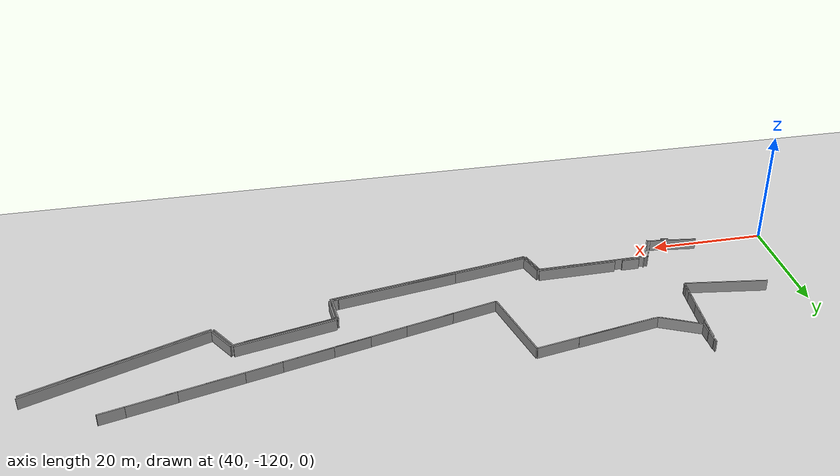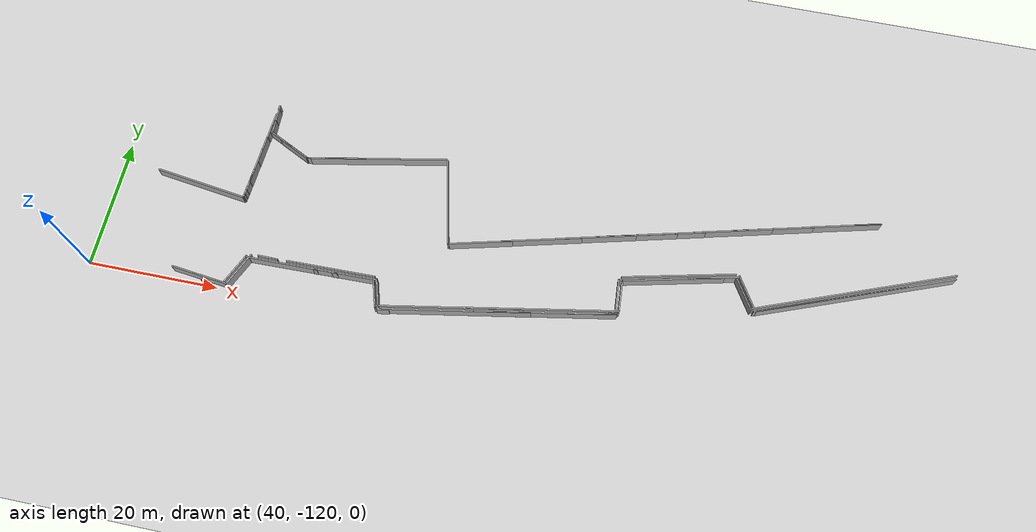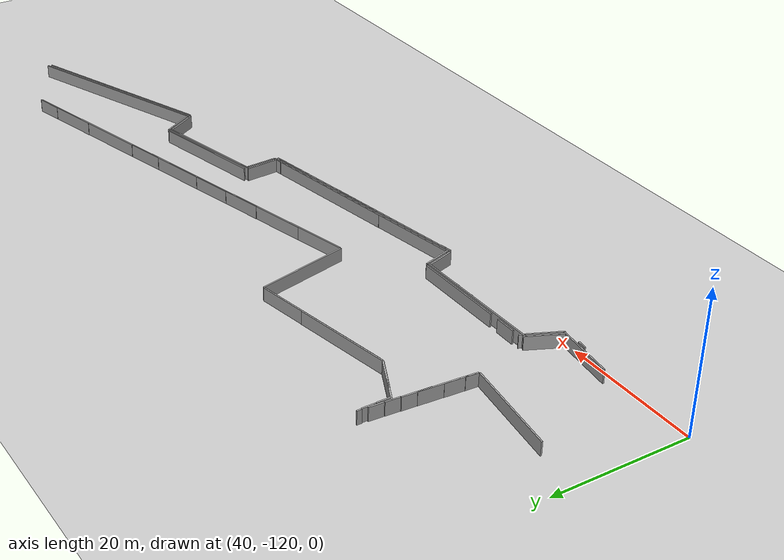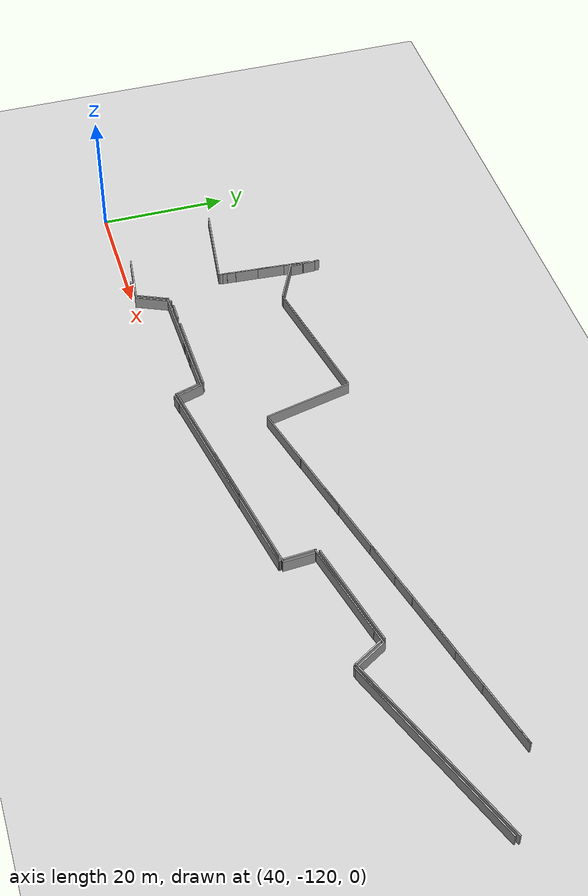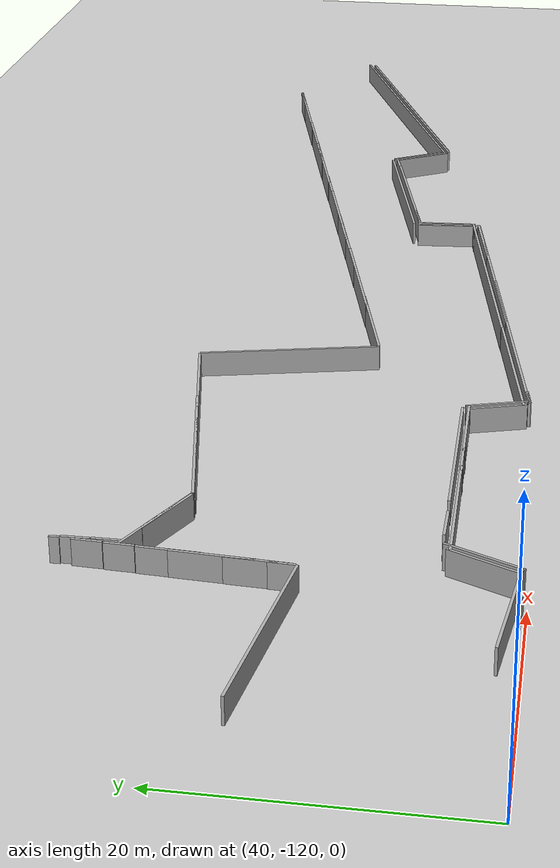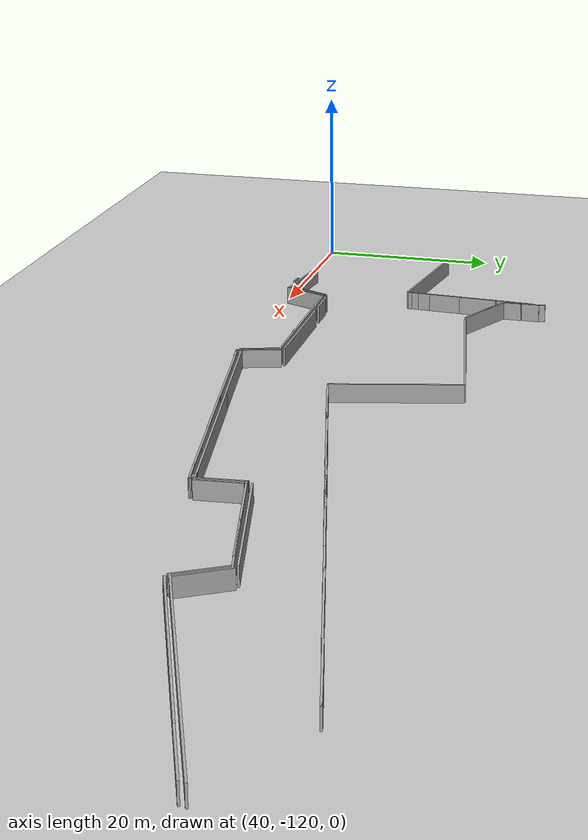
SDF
<sdf version="1.7">
 <world name="slam_world">
  <model name="ground_plane">
   <static>1</static>
   <link name="link">
    <collision name="collision">
     <geometry><plane><normal>0 0 1</normal><size>100 100</size></plane></geometry>
    </collision>
    <visual name="visual">
     <geometry><plane><normal>0 0 1</normal><size>100 100</size></plane></geometry>
     <material>
      <ambient>0.8 0.8 0.8 1</ambient>
      <diffuse>0.8 0.8 0.8 1</diffuse>
      <specular>0.8 0.8 0.8 1</specular>
     </material>
    </visual>
   </link>
  </model>
  <model name="wall_9">
   <static>1</static>
   <pose>78.951 -95.15 1 0 -0 0.189988</pose>
   <link name="link">
    <collision name="collision"><geometry><box><size>21.1811 0.2 2</size></box></geometry></collision>
    <visual name="visual">
     <geometry><box><size>21.1811 0.2 2</size></box></geometry>
     <material><ambient>0.5 0.5 0.5 1</ambient><diffuse>0.7 0.7 0.7 1</diffuse></material>
    </visual>
   </link>
  </model>
  <model name="wall_26">
   <static>1</static>
   <pose>150.051 -104 1 0 -0 0.364735</pose>
   <link name="link">
    <collision name="collision"><geometry><box><size>23.5491 0.2 2</size></box></geometry></collision>
    <visual name="visual">
     <geometry><box><size>23.5491 0.2 2</size></box></geometry>
     <material><ambient>0.5 0.5 0.5 1</ambient><diffuse>0.7 0.7 0.7 1</diffuse></material>
    </visual>
   </link>
  </model>
  <model name="wall_29">
   <static>1</static>
   <pose>73.451 -114.725 1 0 -0 0.017325</pose>
   <link name="link">
    <collision name="collision"><geometry><box><size>20.203 0.2 2</size></box></geometry></collision>
    <visual name="visual">
     <geometry><box><size>20.203 0.2 2</size></box></geometry>
     <material><ambient>0.5 0.5 0.5 1</ambient><diffuse>0.7 0.7 0.7 1</diffuse></material>
    </visual>
   </link>
  </model>
  <model name="wall_31">
   <static>1</static>
   <pose>76.326 -114.2 1 0 -0 0.014651</pose>
   <link name="link">
    <collision name="collision"><geometry><box><size>13.6515 0.2 2</size></box></geometry></collision>
    <visual name="visual">
     <geometry><box><size>13.6515 0.2 2</size></box></geometry>
     <material><ambient>0.5 0.5 0.5 1</ambient><diffuse>0.7 0.7 0.7 1</diffuse></material>
    </visual>
   </link>
  </model>
  <model name="wall_45">
   <static>1</static>
   <pose>153.326 -102.225 1 0 -0 0.36672</pose>
   <link name="link">
    <collision name="collision"><geometry><box><size>31.6548 0.2 2</size></box></geometry></collision>
    <visual name="visual">
     <geometry><box><size>31.6548 0.2 2</size></box></geometry>
     <material><ambient>0.5 0.5 0.5 1</ambient><diffuse>0.7 0.7 0.7 1</diffuse></material>
    </visual>
   </link>
  </model>
  <model name="wall_48">
   <static>1</static>
   <pose>91.026 -99.975 1 0 0 -1.344</pose>
   <link name="link">
    <collision name="collision"><geometry><box><size>14.0087 0.2 2</size></box></geometry></collision>
    <visual name="visual">
     <geometry><box><size>14.0087 0.2 2</size></box></geometry>
     <material><ambient>0.5 0.5 0.5 1</ambient><diffuse>0.7 0.7 0.7 1</diffuse></material>
    </visual>
   </link>
  </model>
  <model name="wall_59">
   <static>1</static>
   <pose>95.001 -116.575 1 0 -0 0.176388</pose>
   <link name="link">
    <collision name="collision"><geometry><box><size>21.9404 0.2 2</size></box></geometry></collision>
    <visual name="visual">
     <geometry><box><size>21.9404 0.2 2</size></box></geometry>
     <material><ambient>0.5 0.5 0.5 1</ambient><diffuse>0.7 0.7 0.7 1</diffuse></material>
    </visual>
   </link>
  </model>
  <model name="wall_111">
   <static>1</static>
   <pose>108.576 -114.125 1 0 -0 0.176474</pose>
   <link name="link">
    <collision name="collision"><geometry><box><size>22.4994 0.2 2</size></box></geometry></collision>
    <visual name="visual">
     <geometry><box><size>22.4994 0.2 2</size></box></geometry>
     <material><ambient>0.5 0.5 0.5 1</ambient><diffuse>0.7 0.7 0.7 1</diffuse></material>
    </visual>
   </link>
  </model>
  <model name="wall_116">
   <static>1</static>
   <pose>127.601 -105.35 1 0 -0 0.228873</pose>
   <link name="link">
    <collision name="collision"><geometry><box><size>18.0712 0.2 2</size></box></geometry></collision>
    <visual name="visual">
     <geometry><box><size>18.0712 0.2 2</size></box></geometry>
     <material><ambient>0.5 0.5 0.5 1</ambient><diffuse>0.7 0.7 0.7 1</diffuse></material>
    </visual>
   </link>
  </model>
  <model name="wall_121">
   <static>1</static>
   <pose>95.751 -116.925 1 0 -0 0.174545</pose>
   <link name="link">
    <collision name="collision"><geometry><box><size>22.7456 0.2 2</size></box></geometry></collision>
    <visual name="visual">
     <geometry><box><size>22.7456 0.2 2</size></box></geometry>
     <material><ambient>0.5 0.5 0.5 1</ambient><diffuse>0.7 0.7 0.7 1</diffuse></material>
    </visual>
   </link>
  </model>
  <model name="wall_130">
   <static>1</static>
   <pose>109.026 -114.55 1 0 -0 0.176459</pose>
   <link name="link">
    <collision name="collision"><geometry><box><size>21.0773 0.2 2</size></box></geometry></collision>
    <visual name="visual">
     <geometry><box><size>21.0773 0.2 2</size></box></geometry>
     <material><ambient>0.5 0.5 0.5 1</ambient><diffuse>0.7 0.7 0.7 1</diffuse></material>
    </visual>
   </link>
  </model>
  <model name="wall_135">
   <static>1</static>
   <pose>153.726 -102.625 1 0 -0 0.366235</pose>
   <link name="link">
    <collision name="collision"><geometry><box><size>30.5779 0.2 2</size></box></geometry></collision>
    <visual name="visual">
     <geometry><box><size>30.5779 0.2 2</size></box></geometry>
     <material><ambient>0.5 0.5 0.5 1</ambient><diffuse>0.7 0.7 0.7 1</diffuse></material>
    </visual>
   </link>
  </model>
  <model name="wall_137">
   <static>1</static>
   <pose>127.476 -104.875 1 0 -0 0.225927</pose>
   <link name="link">
    <collision name="collision"><geometry><box><size>17.1868 0.2 2</size></box></geometry></collision>
    <visual name="visual">
     <geometry><box><size>17.1868 0.2 2</size></box></geometry>
     <material><ambient>0.5 0.5 0.5 1</ambient><diffuse>0.7 0.7 0.7 1</diffuse></material>
    </visual>
   </link>
  </model>
  <model name="wall_160">
   <static>1</static>
   <pose>57.376 -119.025 1 0 0 -0.119429</pose>
   <link name="link">
    <collision name="collision"><geometry><box><size>8.81278 0.2 2</size></box></geometry></collision>
    <visual name="visual">
     <geometry><box><size>8.81278 0.2 2</size></box></geometry>
     <material><ambient>0.5 0.5 0.5 1</ambient><diffuse>0.7 0.7 0.7 1</diffuse></material>
    </visual>
   </link>
  </model>
  <model name="wall_184">
   <static>1</static>
   <pose>53.101 -104.625 1 0 0 -0.137426</pose>
   <link name="link">
    <collision name="collision"><geometry><box><size>14.2342 0.2 2</size></box></geometry></collision>
    <visual name="visual">
     <geometry><box><size>14.2342 0.2 2</size></box></geometry>
     <material><ambient>0.5 0.5 0.5 1</ambient><diffuse>0.7 0.7 0.7 1</diffuse></material>
    </visual>
   </link>
  </model>
  <model name="wall_186">
   <static>1</static>
   <pose>140.451 -94.55 1 0 -0 0.246955</pose>
   <link name="link">
    <collision name="collision"><geometry><box><size>12.2723 0.2 2</size></box></geometry></collision>
    <visual name="visual">
     <geometry><box><size>12.2723 0.2 2</size></box></geometry>
     <material><ambient>0.5 0.5 0.5 1</ambient><diffuse>0.7 0.7 0.7 1</diffuse></material>
    </visual>
   </link>
  </model>
  <model name="wall_196">
   <static>1</static>
   <pose>120.351 -99.7 1 0 -0 0.246955</pose>
   <link name="link">
    <collision name="collision"><geometry><box><size>12.2723 0.2 2</size></box></geometry></collision>
    <visual name="visual">
     <geometry><box><size>12.2723 0.2 2</size></box></geometry>
     <material><ambient>0.5 0.5 0.5 1</ambient><diffuse>0.7 0.7 0.7 1</diffuse></material>
    </visual>
   </link>
  </model>
  <model name="wall_218">
   <static>1</static>
   <pose>106.301 -103.3 1 0 -0 0.246955</pose>
   <link name="link">
    <collision name="collision"><geometry><box><size>12.2723 0.2 2</size></box></geometry></collision>
    <visual name="visual">
     <geometry><box><size>12.2723 0.2 2</size></box></geometry>
     <material><ambient>0.5 0.5 0.5 1</ambient><diffuse>0.7 0.7 0.7 1</diffuse></material>
    </visual>
   </link>
  </model>
  <model name="wall_261">
   <static>1</static>
   <pose>150.501 -91.975 1 0 -0 0.246989</pose>
   <link name="link">
    <collision name="collision"><geometry><box><size>12.0662 0.2 2</size></box></geometry></collision>
    <visual name="visual">
     <geometry><box><size>12.0662 0.2 2</size></box></geometry>
     <material><ambient>0.5 0.5 0.5 1</ambient><diffuse>0.7 0.7 0.7 1</diffuse></material>
    </visual>
   </link>
  </model>
  <model name="wall_271">
   <static>1</static>
   <pose>125.426 -98.4 1 0 -0 0.246161</pose>
   <link name="link">
    <collision name="collision"><geometry><box><size>10.2593 0.2 2</size></box></geometry></collision>
    <visual name="visual">
     <geometry><box><size>10.2593 0.2 2</size></box></geometry>
     <material><ambient>0.5 0.5 0.5 1</ambient><diffuse>0.7 0.7 0.7 1</diffuse></material>
    </visual>
   </link>
  </model>
  <model name="wall_290">
   <static>1</static>
   <pose>134.501 -96.075 1 0 -0 0.246989</pose>
   <link name="link">
    <collision name="collision"><geometry><box><size>12.0662 0.2 2</size></box></geometry></collision>
    <visual name="visual">
     <geometry><box><size>12.0662 0.2 2</size></box></geometry>
     <material><ambient>0.5 0.5 0.5 1</ambient><diffuse>0.7 0.7 0.7 1</diffuse></material>
    </visual>
   </link>
  </model>
  <model name="wall_295">
   <static>1</static>
   <pose>97.426 -105.575 1 0 -0 0.246237</pose>
   <link name="link">
    <collision name="collision"><geometry><box><size>9.6408 0.2 2</size></box></geometry></collision>
    <visual name="visual">
     <geometry><box><size>9.6408 0.2 2</size></box></geometry>
     <material><ambient>0.5 0.5 0.5 1</ambient><diffuse>0.7 0.7 0.7 1</diffuse></material>
    </visual>
   </link>
  </model>
  <model name="wall_303">
   <static>1</static>
   <pose>64.501 -95.5 1 0 0 -0.452154</pose>
   <link name="link">
    <collision name="collision"><geometry><box><size>7.78203 0.2 2</size></box></geometry></collision>
    <visual name="visual">
     <geometry><box><size>7.78203 0.2 2</size></box></geometry>
     <material><ambient>0.5 0.5 0.5 1</ambient><diffuse>0.7 0.7 0.7 1</diffuse></material>
    </visual>
   </link>
  </model>
  <model name="wall_307">
   <static>1</static>
   <pose>119.001 -109.95 1 0 0 -1.4982</pose>
   <link name="link">
    <collision name="collision"><geometry><box><size>5.51453 0.2 2</size></box></geometry></collision>
    <visual name="visual">
     <geometry><box><size>5.51453 0.2 2</size></box></geometry>
     <material><ambient>0.5 0.5 0.5 1</ambient><diffuse>0.7 0.7 0.7 1</diffuse></material>
    </visual>
   </link>
  </model>
  <model name="wall_322">
   <static>1</static>
   <pose>137.326 -105.8 1 0 0 -1.03198</pose>
   <link name="link">
    <collision name="collision"><geometry><box><size>5.35934 0.2 2</size></box></geometry></collision>
    <visual name="visual">
     <geometry><box><size>5.35934 0.2 2</size></box></geometry>
     <material><ambient>0.5 0.5 0.5 1</ambient><diffuse>0.7 0.7 0.7 1</diffuse></material>
    </visual>
   </link>
  </model>
  <model name="wall_326">
   <static>1</static>
   <pose>119.501 -109.9 1 0 0 -1.50838</pose>
   <link name="link">
    <collision name="collision"><geometry><box><size>4.80937 0.2 2</size></box></geometry></collision>
    <visual name="visual">
     <geometry><box><size>4.80937 0.2 2</size></box></geometry>
     <material><ambient>0.5 0.5 0.5 1</ambient><diffuse>0.7 0.7 0.7 1</diffuse></material>
    </visual>
   </link>
  </model>
  <model name="wall_372">
   <static>1</static>
   <pose>83.676 -116.7 1 0 0 -1.27487</pose>
   <link name="link">
    <collision name="collision"><geometry><box><size>4.28632 0.2 2</size></box></geometry></collision>
    <visual name="visual">
     <geometry><box><size>4.28632 0.2 2</size></box></geometry>
     <material><ambient>0.5 0.5 0.5 1</ambient><diffuse>0.7 0.7 0.7 1</diffuse></material>
    </visual>
   </link>
  </model>
  <model name="wall_383">
   <static>1</static>
   <pose>61.301 -89.55 1 0 0 -1.5708</pose>
   <link name="link">
    <collision name="collision"><geometry><box><size>0.7 0.2 2</size></box></geometry></collision>
    <visual name="visual">
     <geometry><box><size>0.7 0.2 2</size></box></geometry>
     <material><ambient>0.5 0.5 0.5 1</ambient><diffuse>0.7 0.7 0.7 1</diffuse></material>
    </visual>
   </link>
  </model>
  <model name="wall_393">
   <static>1</static>
   <pose>61.151 -91.75 1 0 -0 1.52321</pose>
   <link name="link">
    <collision name="collision"><geometry><box><size>2.10238 0.2 2</size></box></geometry></collision>
    <visual name="visual">
     <geometry><box><size>2.10238 0.2 2</size></box></geometry>
     <material><ambient>0.5 0.5 0.5 1</ambient><diffuse>0.7 0.7 0.7 1</diffuse></material>
    </visual>
   </link>
  </model>
  <model name="wall_394">
   <static>1</static>
   <pose>60.576 -100.025 1 0 -0 1.51</pose>
   <link name="link">
    <collision name="collision"><geometry><box><size>5.76064 0.2 2</size></box></geometry></collision>
    <visual name="visual">
     <geometry><box><size>5.76064 0.2 2</size></box></geometry>
     <material><ambient>0.5 0.5 0.5 1</ambient><diffuse>0.7 0.7 0.7 1</diffuse></material>
    </visual>
   </link>
  </model>
  <model name="wall_401">
   <static>1</static>
   <pose>137.626 -105.35 1 0 0 -1.03198</pose>
   <link name="link">
    <collision name="collision"><geometry><box><size>5.35934 0.2 2</size></box></geometry></collision>
    <visual name="visual">
     <geometry><box><size>5.35934 0.2 2</size></box></geometry>
     <material><ambient>0.5 0.5 0.5 1</ambient><diffuse>0.7 0.7 0.7 1</diffuse></material>
    </visual>
   </link>
  </model>
  <model name="wall_410">
   <static>1</static>
   <pose>62.376 -117.025 1 0 -0 1.14576</pose>
   <link name="link">
    <collision name="collision"><geometry><box><size>5.21392 0.2 2</size></box></geometry></collision>
    <visual name="visual">
     <geometry><box><size>5.21392 0.2 2</size></box></geometry>
     <material><ambient>0.5 0.5 0.5 1</ambient><diffuse>0.7 0.7 0.7 1</diffuse></material>
    </visual>
   </link>
  </model>
  <model name="wall_416">
   <static>1</static>
   <pose>60.776 -97.15 1 0 -0 1.51272</pose>
   <link name="link">
    <collision name="collision"><geometry><box><size>4.30726 0.2 2</size></box></geometry></collision>
    <visual name="visual">
     <geometry><box><size>4.30726 0.2 2</size></box></geometry>
     <material><ambient>0.5 0.5 0.5 1</ambient><diffuse>0.7 0.7 0.7 1</diffuse></material>
    </visual>
   </link>
  </model>
  <model name="wall_431">
   <static>1</static>
   <pose>75.101 -95.85 1 0 -0 0.189199</pose>
   <link name="link">
    <collision name="collision"><geometry><box><size>14.3562 0.2 2</size></box></geometry></collision>
    <visual name="visual">
     <geometry><box><size>14.3562 0.2 2</size></box></geometry>
     <material><ambient>0.5 0.5 0.5 1</ambient><diffuse>0.7 0.7 0.7 1</diffuse></material>
    </visual>
   </link>
  </model>
  <model name="wall_438">
   <static>1</static>
   <pose>118.751 -112.475 1 0 0 -0.106736</pose>
   <link name="link">
    <collision name="collision"><geometry><box><size>1.40801 0.2 2</size></box></geometry></collision>
    <visual name="visual">
     <geometry><box><size>1.40801 0.2 2</size></box></geometry>
     <material><ambient>0.5 0.5 0.5 1</ambient><diffuse>0.7 0.7 0.7 1</diffuse></material>
    </visual>
   </link>
  </model>
  <model name="wall_439">
   <static>1</static>
   <pose>66.626 -114.35 1 0 -0 0</pose>
   <link name="link">
    <collision name="collision"><geometry><box><size>3.05 0.2 2</size></box></geometry></collision>
    <visual name="visual">
     <geometry><box><size>3.05 0.2 2</size></box></geometry>
     <material><ambient>0.5 0.5 0.5 1</ambient><diffuse>0.7 0.7 0.7 1</diffuse></material>
    </visual>
   </link>
  </model>
  <model name="wall_440">
   <static>1</static>
   <pose>61.401 -90.9 1 0 -0 1.5708</pose>
   <link name="link">
    <collision name="collision"><geometry><box><size>2 0.2 2</size></box></geometry></collision>
    <visual name="visual">
     <geometry><box><size>2 0.2 2</size></box></geometry>
     <material><ambient>0.5 0.5 0.5 1</ambient><diffuse>0.7 0.7 0.7 1</diffuse></material>
    </visual>
   </link>
  </model>
  <model name="wall_441">
   <static>1</static>
   <pose>60.251 -104.575 1 0 -0 1.51679</pose>
   <link name="link">
    <collision name="collision"><geometry><box><size>1.8527 0.2 2</size></box></geometry></collision>
    <visual name="visual">
     <geometry><box><size>1.8527 0.2 2</size></box></geometry>
     <material><ambient>0.5 0.5 0.5 1</ambient><diffuse>0.7 0.7 0.7 1</diffuse></material>
    </visual>
   </link>
  </model>
  <model name="wall_442">
   <static>1</static>
   <pose>62.901 -117.075 1 0 -0 1.14911</pose>
   <link name="link">
    <collision name="collision"><geometry><box><size>5.86366 0.2 2</size></box></geometry></collision>
    <visual name="visual">
     <geometry><box><size>5.86366 0.2 2</size></box></geometry>
     <material><ambient>0.5 0.5 0.5 1</ambient><diffuse>0.7 0.7 0.7 1</diffuse></material>
    </visual>
   </link>
  </model>
  <model name="wall_443">
   <static>1</static>
   <pose>114.301 -101.25 1 0 -0 0.246955</pose>
   <link name="link">
    <collision name="collision"><geometry><box><size>12.2723 0.2 2</size></box></geometry></collision>
    <visual name="visual">
     <geometry><box><size>12.2723 0.2 2</size></box></geometry>
     <material><ambient>0.5 0.5 0.5 1</ambient><diffuse>0.7 0.7 0.7 1</diffuse></material>
    </visual>
   </link>
  </model>
  <model name="wall_448">
   <static>1</static>
   <pose>84.151 -116.6 1 0 0 -1.27536</pose>
   <link name="link">
    <collision name="collision"><geometry><box><size>4.80833 0.2 2</size></box></geometry></collision>
    <visual name="visual">
     <geometry><box><size>4.80833 0.2 2</size></box></geometry>
     <material><ambient>0.5 0.5 0.5 1</ambient><diffuse>0.7 0.7 0.7 1</diffuse></material>
    </visual>
   </link>
  </model>
  <model name="wall_456">
   <static>1</static>
   <pose>61.451 -92.95 1 0 -0 1.5708</pose>
   <link name="link">
    <collision name="collision"><geometry><box><size>2 0.2 2</size></box></geometry></collision>
    <visual name="visual">
     <geometry><box><size>2 0.2 2</size></box></geometry>
     <material><ambient>0.5 0.5 0.5 1</ambient><diffuse>0.7 0.7 0.7 1</diffuse></material>
    </visual>
   </link>
  </model>
  <model name="wall_509">
   <static>1</static>
   <pose>154.301 -91 1 0 -0 0.244979</pose>
   <link name="link">
    <collision name="collision"><geometry><box><size>4.12311 0.2 2</size></box></geometry></collision>
    <visual name="visual">
     <geometry><box><size>4.12311 0.2 2</size></box></geometry>
     <material><ambient>0.5 0.5 0.5 1</ambient><diffuse>0.7 0.7 0.7 1</diffuse></material>
    </visual>
   </link>
  </model>
  <model name="wall_513">
   <static>1</static>
   <pose>60.276 -104.4 1 0 -0 1.53235</pose>
   <link name="link">
    <collision name="collision"><geometry><box><size>1.30096 0.2 2</size></box></geometry></collision>
    <visual name="visual">
     <geometry><box><size>1.30096 0.2 2</size></box></geometry>
     <material><ambient>0.5 0.5 0.5 1</ambient><diffuse>0.7 0.7 0.7 1</diffuse></material>
    </visual>
   </link>
  </model>
  <model name="wall_514">
   <static>1</static>
   <pose>126.776 -105.575 1 0 -0 0.228274</pose>
   <link name="link">
    <collision name="collision"><geometry><box><size>15.2455 0.2 2</size></box></geometry></collision>
    <visual name="visual">
     <geometry><box><size>15.2455 0.2 2</size></box></geometry>
     <material><ambient>0.5 0.5 0.5 1</ambient><diffuse>0.7 0.7 0.7 1</diffuse></material>
    </visual>
   </link>
  </model>
  <model name="wall_515">
   <static>1</static>
   <pose>61.001 -93.9 1 0 -0 1.52321</pose>
   <link name="link">
    <collision name="collision"><geometry><box><size>2.10238 0.2 2</size></box></geometry></collision>
    <visual name="visual">
     <geometry><box><size>2.10238 0.2 2</size></box></geometry>
     <material><ambient>0.5 0.5 0.5 1</ambient><diffuse>0.7 0.7 0.7 1</diffuse></material>
    </visual>
   </link>
  </model>
  <model name="wall_527">
   <static>1</static>
   <pose>115.851 -113.3 1 0 -0 0.178631</pose>
   <link name="link">
    <collision name="collision"><geometry><box><size>7.31642 0.2 2</size></box></geometry></collision>
    <visual name="visual">
     <geometry><box><size>7.31642 0.2 2</size></box></geometry>
     <material><ambient>0.5 0.5 0.5 1</ambient><diffuse>0.7 0.7 0.7 1</diffuse></material>
    </visual>
   </link>
  </model>
  <model name="wall_571">
   <static>1</static>
   <pose>74.101 -114.75 1 0 -0 0</pose>
   <link name="link">
    <collision name="collision"><geometry><box><size>0.6 0.2 2</size></box></geometry></collision>
    <visual name="visual">
     <geometry><box><size>0.6 0.2 2</size></box></geometry>
     <material><ambient>0.5 0.5 0.5 1</ambient><diffuse>0.7 0.7 0.7 1</diffuse></material>
    </visual>
   </link>
  </model>
  <model name="wall_594">
   <static>1</static>
   <pose>58.451 -119.625 1 0 0 -0.114877</pose>
   <link name="link">
    <collision name="collision"><geometry><box><size>1.30862 0.2 2</size></box></geometry></collision>
    <visual name="visual">
     <geometry><box><size>1.30862 0.2 2</size></box></geometry>
     <material><ambient>0.5 0.5 0.5 1</ambient><diffuse>0.7 0.7 0.7 1</diffuse></material>
    </visual>
   </link>
  </model>
  <model name="wall_618">
   <static>1</static>
   <pose>65.501 -96.025 1 0 0 -0.45528</pose>
   <link name="link">
    <collision name="collision"><geometry><box><size>5.34439 0.2 2</size></box></geometry></collision>
    <visual name="visual">
     <geometry><box><size>5.34439 0.2 2</size></box></geometry>
     <material><ambient>0.5 0.5 0.5 1</ambient><diffuse>0.7 0.7 0.7 1</diffuse></material>
    </visual>
   </link>
  </model>
  <model name="wall_620">
   <static>1</static>
   <pose>77.076 -114.7 1 0 -0 0</pose>
   <link name="link">
    <collision name="collision"><geometry><box><size>0.85 0.2 2</size></box></geometry></collision>
    <visual name="visual">
     <geometry><box><size>0.85 0.2 2</size></box></geometry>
     <material><ambient>0.5 0.5 0.5 1</ambient><diffuse>0.7 0.7 0.7 1</diffuse></material>
    </visual>
   </link>
  </model>
  <model name="wall_621">
   <static>1</static>
   <pose>85.501 -118.8 1 0 -0 0.165149</pose>
   <link name="link">
    <collision name="collision"><geometry><box><size>1.82483 0.2 2</size></box></geometry></collision>
    <visual name="visual">
     <geometry><box><size>1.82483 0.2 2</size></box></geometry>
     <material><ambient>0.5 0.5 0.5 1</ambient><diffuse>0.7 0.7 0.7 1</diffuse></material>
    </visual>
   </link>
  </model>
  <model name="wall_622">
   <static>1</static>
   <pose>60.401 -102.525 1 0 -0 1.51452</pose>
   <link name="link">
    <collision name="collision"><geometry><box><size>3.55563 0.2 2</size></box></geometry></collision>
    <visual name="visual">
     <geometry><box><size>3.55563 0.2 2</size></box></geometry>
     <material><ambient>0.5 0.5 0.5 1</ambient><diffuse>0.7 0.7 0.7 1</diffuse></material>
    </visual>
   </link>
  </model>
 </world>
</sdf>
